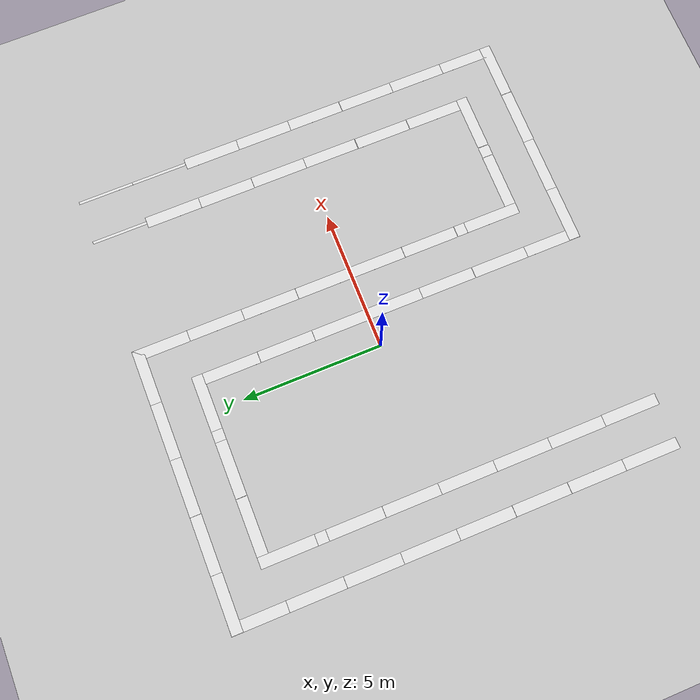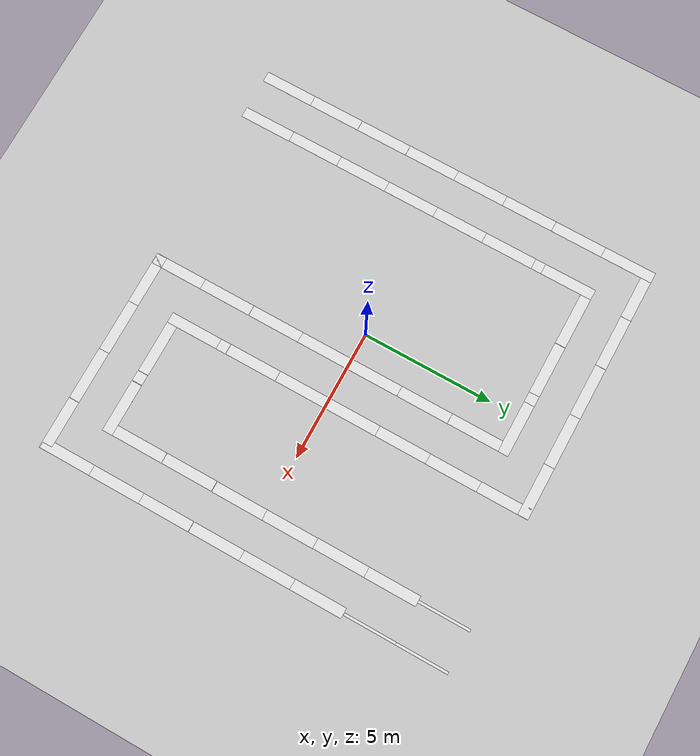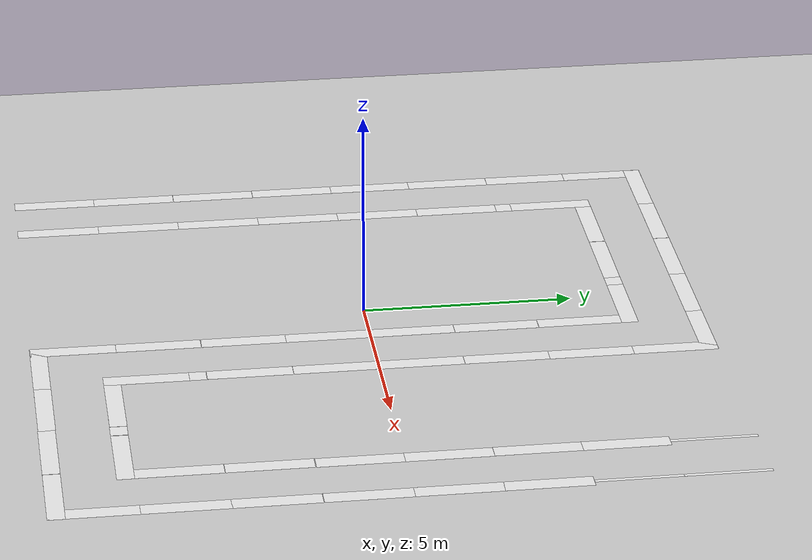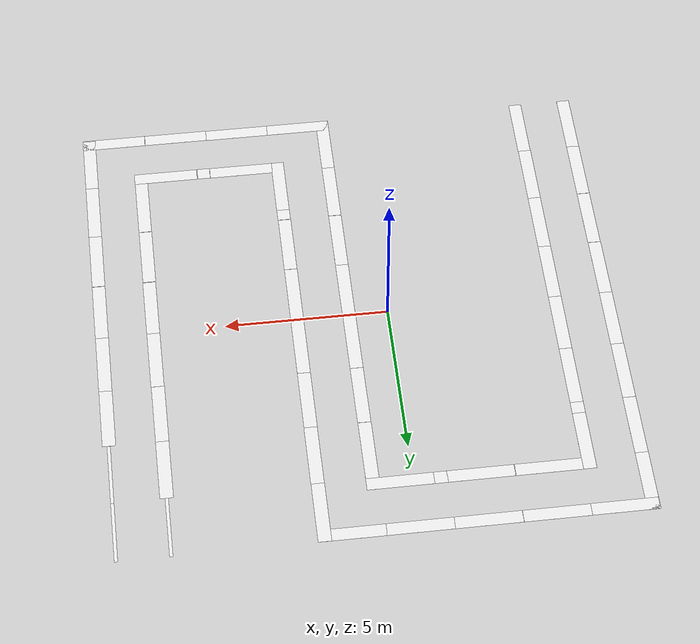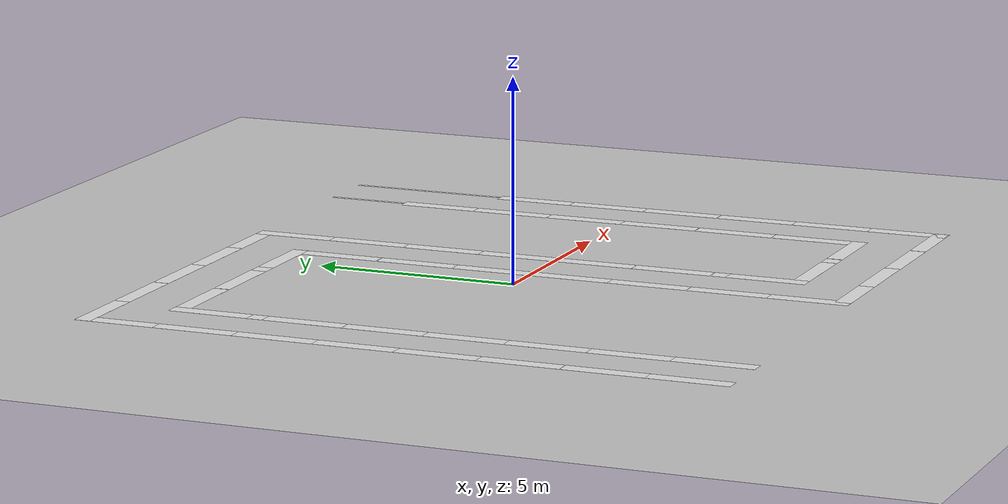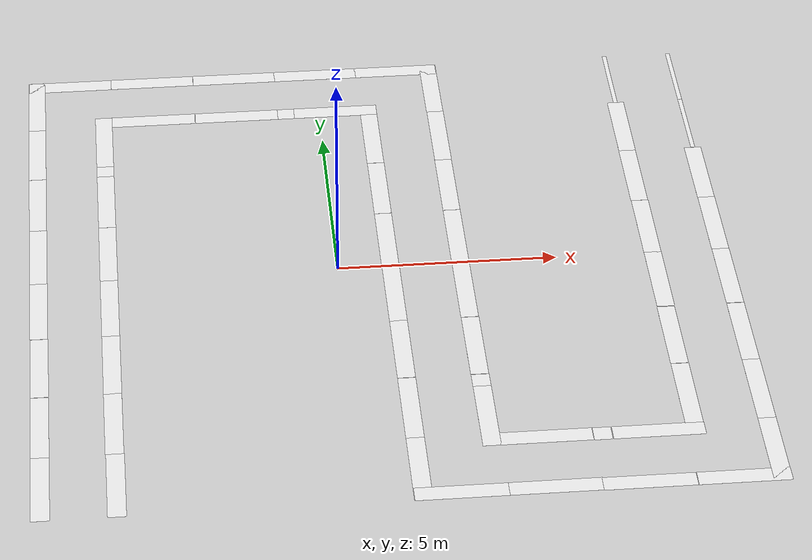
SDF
<sdf version="1.6">
 <world name="default">
  <light name="sun" type="directional">
   <pose>0 0 10 0 -0 0</pose>
   <diffuse>0.8 0.8 0.8 1</diffuse>
   <specular>0.2 0.2 0.2 1</specular>
   <attenuation>
    <range>1000</range>
    <constant>0.9</constant>
    <linear>0.01</linear>
    <quadratic>0.001</quadratic>
   </attenuation>
   <direction>-0.5 0.1 -0.9</direction>
  </light>
  <model name="ground_plane">
   <static>1</static>
   <link name="link">
    <collision name="collision">
     <geometry><plane><normal>0 0 1</normal><size>100 100</size></plane></geometry>
     <surface>
      <contact><collide_bitmask>65535</collide_bitmask></contact>
      <friction><ode><mu>100</mu><mu2>50</mu2></ode></friction>
     </surface>
    </collision>
    <visual name="visual">
     <cast_shadows>0</cast_shadows>
     <geometry><plane><normal>0 0 1</normal><size>100 100</size></plane></geometry>
     <material>
      <script><uri>file://media/materials/scripts/gazebo.material</uri><name>Gazebo/Grey</name></script>
     </material>
    </visual>
   </link>
  </model>
  <gravity>0 0 -9.8</gravity>
  <magnetic_field>6e-06 2.3e-05 -4.2e-05</magnetic_field>
  <atmosphere type="adiabatic"/>
  <physics name="default_physics" default="0" type="ode">
   <max_step_size>0.001</max_step_size>
   <real_time_factor>1</real_time_factor>
   <real_time_update_rate>1000</real_time_update_rate>
  </physics>
  <scene><ambient>0.4 0.4 0.4 1</ambient><background>0.7 0.7 0.7 1</background><shadows>1</shadows></scene>
  <audio><device>default</device></audio>
  <spherical_coordinates>
   <surface_model>EARTH_WGS84</surface_model>
   <latitude_deg>0</latitude_deg>
   <longitude_deg>0</longitude_deg>
   <elevation>0</elevation>
   <heading_deg>0</heading_deg>
  </spherical_coordinates>
  <model name="white line">
   <static>1</static>
   <link name="link_ground">
    <collision name="collision">
     <geometry><plane><normal>0 0 1</normal><size>0.1 2</size></plane></geometry>
     <surface><friction><ode><mu>100</mu><mu2>50</mu2></ode></friction></surface>
    </collision>
    <visual name="visual_ground">
     <cast_shadows>0</cast_shadows>
     <geometry><plane><normal>0 0 1</normal><size>0.1 2</size></plane></geometry>
     <material>
      <script><uri>file://media/materials/scripts/gazebo.material</uri><name>Gazebo/White</name></script>
     </material>
    </visual>
   </link>
   <pose>8.79819 7.00078 0 0 -0 0</pose>
  </model>
  <model name="white line_0">
   <static>1</static>
   <link name="link_ground">
    <collision name="collision">
     <geometry><plane><normal>0 0 1</normal><size>0.1 2</size></plane></geometry>
     <surface><friction><ode><mu>100</mu><mu2>50</mu2></ode></friction></surface>
    </collision>
    <visual name="visual_ground">
     <cast_shadows>0</cast_shadows>
     <geometry><plane><normal>0 0 1</normal><size>0.1 2</size></plane></geometry>
     <material>
      <script><uri>file://media/materials/scripts/gazebo.material</uri><name>Gazebo/White</name></script>
     </material>
    </visual>
   </link>
   <pose>7.21561 7.00606 0 0 -0 0</pose>
  </model>
  <model name="white line_1">
   <static>1</static>
   <link name="link_ground">
    <collision name="collision">
     <geometry><plane><normal>0 0 1</normal><size>0.1 2</size></plane></geometry>
     <surface><friction><ode><mu>100</mu><mu2>50</mu2></ode></friction></surface>
    </collision>
    <visual name="visual_ground">
     <cast_shadows>0</cast_shadows>
     <geometry><plane><normal>0 0 1</normal><size>0.1 2</size></plane></geometry>
     <material>
      <script><uri>file://media/materials/scripts/gazebo.material</uri><name>Gazebo/White</name></script>
     </material>
    </visual>
   </link>
   <pose>8.79819 5.00675 0 0 -0 0</pose>
  </model>
  <model name="white line_2">
   <static>1</static>
   <link name="link_ground">
    <collision name="collision">
     <geometry><plane><normal>0 0 1</normal><size>0.1 2</size></plane></geometry>
     <surface><friction><ode><mu>100</mu><mu2>50</mu2></ode></friction></surface>
    </collision>
    <visual name="visual_ground">
     <cast_shadows>0</cast_shadows>
     <geometry><plane><normal>0 0 1</normal><size>0.4 2</size></plane></geometry>
     <material>
      <script><uri>file://media/materials/scripts/gazebo.material</uri><name>Gazebo/White</name></script>
     </material>
    </visual>
   </link>
   <pose>7.21561 5.00675 0 0 -0 0</pose>
  </model>
  <model name="white line_3">
   <static>1</static>
   <link name="link_ground">
    <collision name="collision">
     <geometry><plane><normal>0 0 1</normal><size>0.4 2</size></plane></geometry>
     <surface><friction><ode><mu>100</mu><mu2>50</mu2></ode></friction></surface>
    </collision>
    <visual name="visual_ground">
     <cast_shadows>0</cast_shadows>
     <geometry><plane><normal>0 0 1</normal><size>0.4 2</size></plane></geometry>
     <material>
      <script><uri>file://media/materials/scripts/gazebo.material</uri><name>Gazebo/White</name></script>
     </material>
    </visual>
   </link>
   <pose>8.78694 2.99686 0 0 -0 0</pose>
  </model>
  <model name="white line_4">
   <static>1</static>
   <link name="link_ground">
    <collision name="collision">
     <geometry><plane><normal>0 0 1</normal><size>0.4 2</size></plane></geometry>
     <surface><friction><ode><mu>100</mu><mu2>50</mu2></ode></friction></surface>
    </collision>
    <visual name="visual_ground">
     <cast_shadows>0</cast_shadows>
     <geometry><plane><normal>0 0 1</normal><size>0.4 2</size></plane></geometry>
     <material>
      <script><uri>file://media/materials/scripts/gazebo.material</uri><name>Gazebo/White</name></script>
     </material>
    </visual>
   </link>
   <pose>7.21276 3.00848 0 0 -0 0</pose>
  </model>
  <model name="white line_5">
   <static>1</static>
   <link name="link_ground">
    <collision name="collision">
     <geometry><plane><normal>0 0 1</normal><size>0.4 2</size></plane></geometry>
     <surface><friction><ode><mu>100</mu><mu2>50</mu2></ode></friction></surface>
    </collision>
    <visual name="visual_ground">
     <cast_shadows>0</cast_shadows>
     <geometry><plane><normal>0 0 1</normal><size>0.4 2</size></plane></geometry>
     <material>
      <script><uri>file://media/materials/scripts/gazebo.material</uri><name>Gazebo/White</name></script>
     </material>
    </visual>
   </link>
   <pose>8.79055 1.00562 0 0 -0 0</pose>
  </model>
  <model name="white line_6">
   <static>1</static>
   <link name="link_ground">
    <collision name="collision">
     <geometry><plane><normal>0 0 1</normal><size>0.4 2</size></plane></geometry>
     <surface><friction><ode><mu>100</mu><mu2>50</mu2></ode></friction></surface>
    </collision>
    <visual name="visual_ground">
     <cast_shadows>0</cast_shadows>
     <geometry><plane><normal>0 0 1</normal><size>0.4 2</size></plane></geometry>
     <material>
      <script><uri>file://media/materials/scripts/gazebo.material</uri><name>Gazebo/White</name></script>
     </material>
    </visual>
   </link>
   <pose>7.22094 1.00562 0 0 -0 0</pose>
  </model>
  <model name="white line_7">
   <static>1</static>
   <link name="link_ground">
    <collision name="collision">
     <geometry><plane><normal>0 0 1</normal><size>0.4 2</size></plane></geometry>
     <surface><friction><ode><mu>100</mu><mu2>50</mu2></ode></friction></surface>
    </collision>
    <visual name="visual_ground">
     <cast_shadows>0</cast_shadows>
     <geometry><plane><normal>0 0 1</normal><size>0.4 2</size></plane></geometry>
     <material>
      <script><uri>file://media/materials/scripts/gazebo.material</uri><name>Gazebo/White</name></script>
     </material>
    </visual>
   </link>
   <pose>8.79384 -0.988457 0 0 -0 0</pose>
  </model>
  <model name="white line_8">
   <static>1</static>
   <link name="link_ground">
    <collision name="collision">
     <geometry><plane><normal>0 0 1</normal><size>0.4 2</size></plane></geometry>
     <surface><friction><ode><mu>100</mu><mu2>50</mu2></ode></friction></surface>
    </collision>
    <visual name="visual_ground">
     <cast_shadows>0</cast_shadows>
     <geometry><plane><normal>0 0 1</normal><size>0.4 2</size></plane></geometry>
     <material>
      <script><uri>file://media/materials/scripts/gazebo.material</uri><name>Gazebo/White</name></script>
     </material>
    </visual>
   </link>
   <pose>7.22305 -0.981907 0 0 -0 0</pose>
  </model>
  <model name="white line_9">
   <static>1</static>
   <link name="link_ground">
    <collision name="collision">
     <geometry><plane><normal>0 0 1</normal><size>0.4 2</size></plane></geometry>
     <surface><friction><ode><mu>100</mu><mu2>50</mu2></ode></friction></surface>
    </collision>
    <visual name="visual_ground">
     <cast_shadows>0</cast_shadows>
     <geometry><plane><normal>0 0 1</normal><size>0.4 2</size></plane></geometry>
     <material>
      <script><uri>file://media/materials/scripts/gazebo.material</uri><name>Gazebo/White</name></script>
     </material>
    </visual>
   </link>
   <pose>8.7951 -3.00096 0 0 -0 0</pose>
  </model>
  <model name="white line_10">
   <static>1</static>
   <link name="link_ground">
    <collision name="collision">
     <geometry><plane><normal>0 0 1</normal><size>0.4 2</size></plane></geometry>
     <surface><friction><ode><mu>100</mu><mu2>50</mu2></ode></friction></surface>
    </collision>
    <visual name="visual_ground">
     <cast_shadows>0</cast_shadows>
     <geometry><plane><normal>0 0 1</normal><size>0.4 2</size></plane></geometry>
     <material>
      <script><uri>file://media/materials/scripts/gazebo.material</uri><name>Gazebo/White</name></script>
     </material>
    </visual>
   </link>
   <pose>7.21529 -3.00096 0 0 -0 0</pose>
  </model>
  <model name="white line_11">
   <static>1</static>
   <link name="link_ground">
    <collision name="collision">
     <geometry><plane><normal>0 0 1</normal><size>0.4 2</size></plane></geometry>
     <surface><friction><ode><mu>100</mu><mu2>50</mu2></ode></friction></surface>
    </collision>
    <visual name="visual_ground">
     <cast_shadows>0</cast_shadows>
     <geometry><plane><normal>0 0 1</normal><size>0.4 2</size></plane></geometry>
     <material>
      <script><uri>file://media/materials/scripts/gazebo.material</uri><name>Gazebo/White</name></script>
     </material>
    </visual>
   </link>
   <pose>8.79781 -4.98928 0 0 -0 0</pose>
  </model>
  <model name="white line_12">
   <static>1</static>
   <link name="link_ground">
    <collision name="collision">
     <geometry><plane><normal>0 0 1</normal><size>0.4 2</size></plane></geometry>
     <surface><friction><ode><mu>100</mu><mu2>50</mu2></ode></friction></surface>
    </collision>
    <visual name="visual_ground">
     <cast_shadows>0</cast_shadows>
     <geometry><plane><normal>0 0 1</normal><size>0.4 2</size></plane></geometry>
     <material>
      <script><uri>file://media/materials/scripts/gazebo.material</uri><name>Gazebo/White</name></script>
     </material>
    </visual>
   </link>
   <pose>7.21787 -5.01138 0 0 -0 0</pose>
  </model>
  <model name="white line_13">
   <static>1</static>
   <link name="link_ground">
    <collision name="collision">
     <geometry><plane><normal>0 0 1</normal><size>0.4 2</size></plane></geometry>
     <surface><friction><ode><mu>100</mu><mu2>50</mu2></ode></friction></surface>
    </collision>
    <visual name="visual_ground">
     <cast_shadows>0</cast_shadows>
     <geometry><plane><normal>0 0 1</normal><size>0.4 2</size></plane></geometry>
     <material>
      <script><uri>file://media/materials/scripts/gazebo.material</uri><name>Gazebo/White</name></script>
     </material>
    </visual>
   </link>
   <pose>8.79781 -6.98912 0 0 -0 0</pose>
  </model>
  <model name="white line_14">
   <static>1</static>
   <link name="link_ground">
    <collision name="collision">
     <geometry><plane><normal>0 0 1</normal><size>2 0.4</size></plane></geometry>
     <surface><friction><ode><mu>100</mu><mu2>50</mu2></ode></friction></surface>
    </collision>
    <visual name="visual_ground">
     <cast_shadows>0</cast_shadows>
     <geometry><plane><normal>0 0 1</normal><size>2 0.4</size></plane></geometry>
     <material>
      <script><uri>file://media/materials/scripts/gazebo.material</uri><name>Gazebo/White</name></script>
     </material>
    </visual>
   </link>
   <pose>6.42234 -6.20458 0 0 -0 0</pose>
  </model>
  <model name="white line_15">
   <static>1</static>
   <link name="link_ground">
    <collision name="collision">
     <geometry><plane><normal>0 0 1</normal><size>2 0.4</size></plane></geometry>
     <surface><friction><ode><mu>100</mu><mu2>50</mu2></ode></friction></surface>
    </collision>
    <visual name="visual_ground">
     <cast_shadows>0</cast_shadows>
     <geometry><plane><normal>0 0 1</normal><size>2 0.4</size></plane></geometry>
     <material>
      <script><uri>file://media/materials/scripts/gazebo.material</uri><name>Gazebo/White</name></script>
     </material>
    </visual>
   </link>
   <pose>8.00228 -7.81774 0 0 -0 0</pose>
  </model>
  <model name="white line_16">
   <static>1</static>
   <link name="link_ground">
    <collision name="collision">
     <geometry><plane><normal>0 0 1</normal><size>2 0.4</size></plane></geometry>
     <surface><friction><ode><mu>100</mu><mu2>50</mu2></ode></friction></surface>
    </collision>
    <visual name="visual_ground">
     <cast_shadows>0</cast_shadows>
     <geometry><plane><normal>0 0 1</normal><size>2 0.4</size></plane></geometry>
     <material>
      <script><uri>file://media/materials/scripts/gazebo.material</uri><name>Gazebo/White</name></script>
     </material>
    </visual>
   </link>
   <pose>5.99145 -7.81774 0 0 -0 0</pose>
  </model>
  <model name="white line_17">
   <static>1</static>
   <link name="link_ground">
    <collision name="collision">
     <geometry><plane><normal>0 0 1</normal><size>0.4 0.4</size></plane></geometry>
     <surface><friction><ode><mu>100</mu><mu2>50</mu2></ode></friction></surface>
    </collision>
    <visual name="visual_ground">
     <cast_shadows>0</cast_shadows>
     <geometry><plane><normal>0 0 1</normal><size>0.4 0.4</size></plane></geometry>
     <material>
      <script><uri>file://media/materials/scripts/gazebo.material</uri><name>Gazebo/White</name></script>
     </material>
    </visual>
   </link>
   <pose>5.20473 -6.20432 0 0 -0 0</pose>
  </model>
  <model name="white line_18">
   <static>1</static>
   <link name="link_ground">
    <collision name="collision">
     <geometry><plane><normal>0 0 1</normal><size>2 0.4</size></plane></geometry>
     <surface><friction><ode><mu>100</mu><mu2>50</mu2></ode></friction></surface>
    </collision>
    <visual name="visual_ground">
     <cast_shadows>0</cast_shadows>
     <geometry><plane><normal>0 0 1</normal><size>2 0.4</size></plane></geometry>
     <material>
      <script><uri>file://media/materials/scripts/gazebo.material</uri><name>Gazebo/White</name></script>
     </material>
    </visual>
   </link>
   <pose>4.00181 -7.8073 0 0 -0 0</pose>
  </model>
  <model name="white line_19">
   <static>1</static>
   <link name="link_ground">
    <collision name="collision">
     <geometry><plane><normal>0 0 1</normal><size>2 0.4</size></plane></geometry>
     <surface><friction><ode><mu>100</mu><mu2>50</mu2></ode></friction></surface>
    </collision>
    <visual name="visual_ground">
     <cast_shadows>0</cast_shadows>
     <geometry><plane><normal>0 0 1</normal><size>2 0.4</size></plane></geometry>
     <material>
      <script><uri>file://media/materials/scripts/gazebo.material</uri><name>Gazebo/White</name></script>
     </material>
    </visual>
   </link>
   <pose>3.99642 -6.19759 0 0 -0 0</pose>
  </model>
  <model name="white line_20">
   <static>1</static>
   <link name="link_ground">
    <collision name="collision">
     <geometry><plane><normal>0 0 1</normal><size>2 0.4</size></plane></geometry>
     <surface><friction><ode><mu>100</mu><mu2>50</mu2></ode></friction></surface>
    </collision>
    <visual name="visual_ground">
     <cast_shadows>0</cast_shadows>
     <geometry><plane><normal>0 0 1</normal><size>2 0.4</size></plane></geometry>
     <material>
      <script><uri>file://media/materials/scripts/gazebo.material</uri><name>Gazebo/White</name></script>
     </material>
    </visual>
   </link>
   <pose>2.00953 -7.8093 0 0 -0 0</pose>
  </model>
  <model name="white line_21">
   <static>1</static>
   <link name="link_ground">
    <collision name="collision">
     <geometry><plane><normal>0 0 1</normal><size>0.4 2</size></plane></geometry>
     <surface><friction><ode><mu>100</mu><mu2>50</mu2></ode></friction></surface>
    </collision>
    <visual name="visual_ground">
     <cast_shadows>0</cast_shadows>
     <geometry><plane><normal>0 0 1</normal><size>0.4 2</size></plane></geometry>
     <material>
      <script><uri>file://media/materials/scripts/gazebo.material</uri><name>Gazebo/White</name></script>
     </material>
    </visual>
   </link>
   <pose>2.81014 -5.39565 0 0 -0 0</pose>
  </model>
  <model name="white line_22">
   <static>1</static>
   <link name="link_ground">
    <collision name="collision">
     <geometry><plane><normal>0 0 1</normal><size>0.4 2</size></plane></geometry>
     <surface><friction><ode><mu>100</mu><mu2>50</mu2></ode></friction></surface>
    </collision>
    <visual name="visual_ground">
     <cast_shadows>0</cast_shadows>
     <geometry><plane><normal>0 0 1</normal><size>0.4 2</size></plane></geometry>
     <material>
      <script><uri>file://media/materials/scripts/gazebo.material</uri><name>Gazebo/White</name></script>
     </material>
    </visual>
   </link>
   <pose>1.19714 -6.99686 0 0 -0 0</pose>
  </model>
  <model name="white line_23">
   <static>1</static>
   <link name="link_ground">
    <collision name="collision">
     <geometry><plane><normal>0 0 1</normal><size>0.4 2</size></plane></geometry>
     <surface><friction><ode><mu>100</mu><mu2>50</mu2></ode></friction></surface>
    </collision>
    <visual name="visual_ground">
     <cast_shadows>0</cast_shadows>
     <geometry><plane><normal>0 0 1</normal><size>0.4 2</size></plane></geometry>
     <material>
      <script><uri>file://media/materials/scripts/gazebo.material</uri><name>Gazebo/White</name></script>
     </material>
    </visual>
   </link>
   <pose>1.19714 -5.00119 0 0 -0 0</pose>
  </model>
  <model name="white line_24">
   <static>1</static>
   <link name="link_ground">
    <collision name="collision">
     <geometry><plane><normal>0 0 1</normal><size>0.4 0.4</size></plane></geometry>
     <surface><friction><ode><mu>100</mu><mu2>50</mu2></ode></friction></surface>
    </collision>
    <visual name="visual_ground">
     <cast_shadows>0</cast_shadows>
     <geometry><plane><normal>0 0 1</normal><size>0.4 0.4</size></plane></geometry>
     <material>
      <script><uri>file://media/materials/scripts/gazebo.material</uri><name>Gazebo/White</name></script>
     </material>
    </visual>
   </link>
   <pose>2.80795 -4.21099 0 0 -0 0</pose>
  </model>
  <model name="white line_25">
   <static>1</static>
   <link name="link_ground">
    <collision name="collision">
     <geometry><plane><normal>0 0 1</normal><size>0.4 2</size></plane></geometry>
     <surface><friction><ode><mu>100</mu><mu2>50</mu2></ode></friction></surface>
    </collision>
    <visual name="visual_ground">
     <cast_shadows>0</cast_shadows>
     <geometry><plane><normal>0 0 1</normal><size>0.4 2</size></plane></geometry>
     <material>
      <script><uri>file://media/materials/scripts/gazebo.material</uri><name>Gazebo/White</name></script>
     </material>
    </visual>
   </link>
   <pose>2.80294 -3.0004 0 0 -0 0</pose>
  </model>
  <model name="white line_26">
   <static>1</static>
   <link name="link_ground">
    <collision name="collision">
     <geometry><plane><normal>0 0 1</normal><size>0.4 2</size></plane></geometry>
     <surface><friction><ode><mu>100</mu><mu2>50</mu2></ode></friction></surface>
    </collision>
    <visual name="visual_ground">
     <cast_shadows>0</cast_shadows>
     <geometry><plane><normal>0 0 1</normal><size>0.4 2</size></plane></geometry>
     <material>
      <script><uri>file://media/materials/scripts/gazebo.material</uri><name>Gazebo/White</name></script>
     </material>
    </visual>
   </link>
   <pose>1.19712 -2.99037 0 0 -0 0</pose>
  </model>
  <model name="white line_27">
   <static>1</static>
   <link name="link_ground">
    <collision name="collision">
     <geometry><plane><normal>0 0 1</normal><size>0.4 2</size></plane></geometry>
     <surface><friction><ode><mu>100</mu><mu2>50</mu2></ode></friction></surface>
    </collision>
    <visual name="visual_ground">
     <cast_shadows>0</cast_shadows>
     <geometry><plane><normal>0 0 1</normal><size>0.4 2</size></plane></geometry>
     <material>
      <script><uri>file://media/materials/scripts/gazebo.material</uri><name>Gazebo/White</name></script>
     </material>
    </visual>
   </link>
   <pose>2.79795 -0.99434 0 0 -0 0</pose>
  </model>
  <model name="white line_28">
   <static>1</static>
   <link name="link_ground">
    <collision name="collision">
     <geometry><plane><normal>0 0 1</normal><size>0.4 2</size></plane></geometry>
     <surface><friction><ode><mu>100</mu><mu2>50</mu2></ode></friction></surface>
    </collision>
    <visual name="visual_ground">
     <cast_shadows>0</cast_shadows>
     <geometry><plane><normal>0 0 1</normal><size>0.4 2</size></plane></geometry>
     <material>
      <script><uri>file://media/materials/scripts/gazebo.material</uri><name>Gazebo/White</name></script>
     </material>
    </visual>
   </link>
   <pose>1.19712 -0.999376 0 0 -0 0</pose>
  </model>
  <model name="white line_29">
   <static>1</static>
   <link name="link_ground">
    <collision name="collision">
     <geometry><plane><normal>0 0 1</normal><size>0.4 2</size></plane></geometry>
     <surface><friction><ode><mu>100</mu><mu2>50</mu2></ode></friction></surface>
    </collision>
    <visual name="visual_ground">
     <cast_shadows>0</cast_shadows>
     <geometry><plane><normal>0 0 1</normal><size>0.4 2</size></plane></geometry>
     <material>
      <script><uri>file://media/materials/scripts/gazebo.material</uri><name>Gazebo/White</name></script>
     </material>
    </visual>
   </link>
   <pose>2.79787 1.00431 0 0 -0 0</pose>
  </model>
  <model name="white line_30">
   <static>1</static>
   <link name="link_ground">
    <collision name="collision">
     <geometry><plane><normal>0 0 1</normal><size>0.4 2</size></plane></geometry>
     <surface><friction><ode><mu>100</mu><mu2>50</mu2></ode></friction></surface>
    </collision>
    <visual name="visual_ground">
     <cast_shadows>0</cast_shadows>
     <geometry><plane><normal>0 0 1</normal><size>0.4 2</size></plane></geometry>
     <material>
      <script><uri>file://media/materials/scripts/gazebo.material</uri><name>Gazebo/White</name></script>
     </material>
    </visual>
   </link>
   <pose>1.19303 1.00431 0 0 -0 0</pose>
  </model>
  <model name="white line_31">
   <static>1</static>
   <link name="link_ground">
    <collision name="collision">
     <geometry><plane><normal>0 0 1</normal><size>0.4 2</size></plane></geometry>
     <surface><friction><ode><mu>100</mu><mu2>50</mu2></ode></friction></surface>
    </collision>
    <visual name="visual_ground">
     <cast_shadows>0</cast_shadows>
     <geometry><plane><normal>0 0 1</normal><size>0.4 2</size></plane></geometry>
     <material>
      <script><uri>file://media/materials/scripts/gazebo.material</uri><name>Gazebo/White</name></script>
     </material>
    </visual>
   </link>
   <pose>2.79787 3.00655 0 0 -0 0</pose>
  </model>
  <model name="white line_32">
   <static>1</static>
   <link name="link_ground">
    <collision name="collision">
     <geometry><plane><normal>0 0 1</normal><size>0.4 2</size></plane></geometry>
     <surface><friction><ode><mu>100</mu><mu2>50</mu2></ode></friction></surface>
    </collision>
    <visual name="visual_ground">
     <cast_shadows>0</cast_shadows>
     <geometry><plane><normal>0 0 1</normal><size>0.4 2</size></plane></geometry>
     <material>
      <script><uri>file://media/materials/scripts/gazebo.material</uri><name>Gazebo/White</name></script>
     </material>
    </visual>
   </link>
   <pose>1.19303 3.00655 0 0 -0 0</pose>
  </model>
  <model name="white line_33">
   <static>1</static>
   <link name="link_ground">
    <collision name="collision">
     <geometry><plane><normal>0 0 1</normal><size>0.4 2</size></plane></geometry>
     <surface><friction><ode><mu>100</mu><mu2>50</mu2></ode></friction></surface>
    </collision>
    <visual name="visual_ground">
     <cast_shadows>0</cast_shadows>
     <geometry><plane><normal>0 0 1</normal><size>0.4 2</size></plane></geometry>
     <material>
      <script><uri>file://media/materials/scripts/gazebo.material</uri><name>Gazebo/White</name></script>
     </material>
    </visual>
   </link>
   <pose>2.80224 5.0036 0 0 -0 0</pose>
  </model>
  <model name="white line_34">
   <static>1</static>
   <link name="link_ground">
    <collision name="collision">
     <geometry><plane><normal>0 0 1</normal><size>0.4 2</size></plane></geometry>
     <surface><friction><ode><mu>100</mu><mu2>50</mu2></ode></friction></surface>
    </collision>
    <visual name="visual_ground">
     <cast_shadows>0</cast_shadows>
     <geometry><plane><normal>0 0 1</normal><size>0.4 2</size></plane></geometry>
     <material>
      <script><uri>file://media/materials/scripts/gazebo.material</uri><name>Gazebo/White</name></script>
     </material>
    </visual>
   </link>
   <pose>1.18928 5.01286 0 0 -0 0</pose>
  </model>
  <model name="white line_35">
   <static>1</static>
   <link name="link_ground">
    <collision name="collision">
     <geometry><plane><normal>0 0 1</normal><size>0.4 2</size></plane></geometry>
     <surface><friction><ode><mu>100</mu><mu2>50</mu2></ode></friction></surface>
    </collision>
    <visual name="visual_ground">
     <cast_shadows>0</cast_shadows>
     <geometry><plane><normal>0 0 1</normal><size>0.4 2</size></plane></geometry>
     <material>
      <script><uri>file://media/materials/scripts/gazebo.material</uri><name>Gazebo/White</name></script>
     </material>
    </visual>
   </link>
   <pose>2.79742 7.0011 0 0 -0 0</pose>
  </model>
  <model name="white line_36">
   <static>1</static>
   <link name="link_ground">
    <collision name="collision">
     <geometry><plane><normal>0 0 1</normal><size>2 0.4</size></plane></geometry>
     <surface><friction><ode><mu>100</mu><mu2>50</mu2></ode></friction></surface>
    </collision>
    <visual name="visual_ground">
     <cast_shadows>0</cast_shadows>
     <geometry><plane><normal>0 0 1</normal><size>2 0.4</size></plane></geometry>
     <material>
      <script><uri>file://media/materials/scripts/gazebo.material</uri><name>Gazebo/White</name></script>
     </material>
    </visual>
   </link>
   <pose>1.98758 7.80318 0 0 -0 0</pose>
  </model>
  <model name="white line_37">
   <static>1</static>
   <link name="link_ground">
    <collision name="collision">
     <geometry><plane><normal>0 0 1</normal><size>2 0.4</size></plane></geometry>
     <surface><friction><ode><mu>100</mu><mu2>50</mu2></ode></friction></surface>
    </collision>
    <visual name="visual_ground">
     <cast_shadows>0</cast_shadows>
     <geometry><plane><normal>0 0 1</normal><size>2 0.4</size></plane></geometry>
     <material>
      <script><uri>file://media/materials/scripts/gazebo.material</uri><name>Gazebo/White</name></script>
     </material>
    </visual>
   </link>
   <pose>0.390717 6.1989 0 0 -0 0</pose>
  </model>
  <model name="white line_38">
   <static>1</static>
   <link name="link_ground">
    <collision name="collision">
     <geometry><plane><normal>0 0 1</normal><size>2 0.4</size></plane></geometry>
     <surface><friction><ode><mu>100</mu><mu2>50</mu2></ode></friction></surface>
    </collision>
    <visual name="visual_ground">
     <cast_shadows>0</cast_shadows>
     <geometry><plane><normal>0 0 1</normal><size>2 0.4</size></plane></geometry>
     <material>
      <script><uri>file://media/materials/scripts/gazebo.material</uri><name>Gazebo/White</name></script>
     </material>
    </visual>
   </link>
   <pose>0.001404 7.80197 0 0 -0 0</pose>
  </model>
  <model name="white line_39">
   <static>1</static>
   <link name="link_ground">
    <collision name="collision">
     <geometry><plane><normal>0 0 1</normal><size>0.4 0.4</size></plane></geometry>
     <surface><friction><ode><mu>100</mu><mu2>50</mu2></ode></friction></surface>
    </collision>
    <visual name="visual_ground">
     <cast_shadows>0</cast_shadows>
     <geometry><plane><normal>0 0 1</normal><size>0.4 0.4</size></plane></geometry>
     <material>
      <script><uri>file://media/materials/scripts/gazebo.material</uri><name>Gazebo/White</name></script>
     </material>
    </visual>
   </link>
   <pose>-0.807768 6.1989 0 0 -0 0</pose>
  </model>
  <model name="white line_40">
   <static>1</static>
   <link name="link_ground">
    <collision name="collision">
     <geometry><plane><normal>0 0 1</normal><size>2 0.4</size></plane></geometry>
     <surface><friction><ode><mu>100</mu><mu2>50</mu2></ode></friction></surface>
    </collision>
    <visual name="visual_ground">
     <cast_shadows>0</cast_shadows>
     <geometry><plane><normal>0 0 1</normal><size>2 0.4</size></plane></geometry>
     <material>
      <script><uri>file://media/materials/scripts/gazebo.material</uri><name>Gazebo/White</name></script>
     </material>
    </visual>
   </link>
   <pose>-1.99216 7.8021 0 0 -0 0</pose>
  </model>
  <model name="white line_41">
   <static>1</static>
   <link name="link_ground">
    <collision name="collision">
     <geometry><plane><normal>0 0 1</normal><size>2 0.4</size></plane></geometry>
     <surface><friction><ode><mu>100</mu><mu2>50</mu2></ode></friction></surface>
    </collision>
    <visual name="visual_ground">
     <cast_shadows>0</cast_shadows>
     <geometry><plane><normal>0 0 1</normal><size>2 0.4</size></plane></geometry>
     <material>
      <script><uri>file://media/materials/scripts/gazebo.material</uri><name>Gazebo/White</name></script>
     </material>
    </visual>
   </link>
   <pose>-1.99855 6.19776 0 0 -0 0</pose>
  </model>
  <model name="white line_42">
   <static>1</static>
   <link name="link_ground">
    <collision name="collision">
     <geometry><plane><normal>0 0 1</normal><size>2 0.4</size></plane></geometry>
     <surface><friction><ode><mu>100</mu><mu2>50</mu2></ode></friction></surface>
    </collision>
    <visual name="visual_ground">
     <cast_shadows>0</cast_shadows>
     <geometry><plane><normal>0 0 1</normal><size>2 0.4</size></plane></geometry>
     <material>
      <script><uri>file://media/materials/scripts/gazebo.material</uri><name>Gazebo/White</name></script>
     </material>
    </visual>
   </link>
   <pose>-3.99754 7.8021 0 0 -0 0</pose>
  </model>
  <model name="white line_43">
   <static>1</static>
   <link name="link_ground">
    <collision name="collision">
     <geometry><plane><normal>0 0 1</normal><size>2 0.4</size></plane></geometry>
     <surface><friction><ode><mu>100</mu><mu2>50</mu2></ode></friction></surface>
    </collision>
    <visual name="visual_ground">
     <cast_shadows>0</cast_shadows>
     <geometry><plane><normal>0 0 1</normal><size>2 0.4</size></plane></geometry>
     <material>
      <script><uri>file://media/materials/scripts/gazebo.material</uri><name>Gazebo/White</name></script>
     </material>
    </visual>
   </link>
   <pose>-4.0103 6.19776 0 0 -0 0</pose>
  </model>
  <model name="white line_44">
   <static>1</static>
   <link name="link_ground">
    <collision name="collision">
     <geometry><plane><normal>0 0 1</normal><size>2 0.4</size></plane></geometry>
     <surface><friction><ode><mu>100</mu><mu2>50</mu2></ode></friction></surface>
    </collision>
    <visual name="visual_ground">
     <cast_shadows>0</cast_shadows>
     <geometry><plane><normal>0 0 1</normal><size>2 0.4</size></plane></geometry>
     <material>
      <script><uri>file://media/materials/scripts/gazebo.material</uri><name>Gazebo/White</name></script>
     </material>
    </visual>
   </link>
   <pose>-5.99833 7.79851 0 0 -0 0</pose>
  </model>
  <model name="white line_45">
   <static>1</static>
   <link name="link_ground">
    <collision name="collision">
     <geometry><plane><normal>0 0 1</normal><size>0.4 2</size></plane></geometry>
     <surface><friction><ode><mu>100</mu><mu2>50</mu2></ode></friction></surface>
    </collision>
    <visual name="visual_ground">
     <cast_shadows>0</cast_shadows>
     <geometry><plane><normal>0 0 1</normal><size>0.4 2</size></plane></geometry>
     <material>
      <script><uri>file://media/materials/scripts/gazebo.material</uri><name>Gazebo/White</name></script>
     </material>
    </visual>
   </link>
   <pose>-6.80791 7.00153 0 0 -0 0</pose>
  </model>
  <model name="white line_46">
   <static>1</static>
   <link name="link_ground">
    <collision name="collision">
     <geometry><plane><normal>0 0 1</normal><size>0.4 2</size></plane></geometry>
     <surface><friction><ode><mu>100</mu><mu2>50</mu2></ode></friction></surface>
    </collision>
    <visual name="visual_ground">
     <cast_shadows>0</cast_shadows>
     <geometry><plane><normal>0 0 1</normal><size>0.4 2</size></plane></geometry>
     <material>
      <script><uri>file://media/materials/scripts/gazebo.material</uri><name>Gazebo/White</name></script>
     </material>
    </visual>
   </link>
   <pose>-5.20779 5.39493 0 0 -0 0</pose>
  </model>
  <model name="white line_47">
   <static>1</static>
   <link name="link_ground">
    <collision name="collision">
     <geometry><plane><normal>0 0 1</normal><size>0.4 0.4</size></plane></geometry>
     <surface><friction><ode><mu>100</mu><mu2>50</mu2></ode></friction></surface>
    </collision>
    <visual name="visual_ground">
     <cast_shadows>0</cast_shadows>
     <geometry><plane><normal>0 0 1</normal><size>0.4 0.4</size></plane></geometry>
     <material>
      <script><uri>file://media/materials/scripts/gazebo.material</uri><name>Gazebo/White</name></script>
     </material>
    </visual>
   </link>
   <pose>-5.20779 4.20159 0 0 -0 0</pose>
  </model>
  <model name="white line_48">
   <static>1</static>
   <link name="link_ground">
    <collision name="collision">
     <geometry><plane><normal>0 0 1</normal><size>0.4 2</size></plane></geometry>
     <surface><friction><ode><mu>100</mu><mu2>50</mu2></ode></friction></surface>
    </collision>
    <visual name="visual_ground">
     <cast_shadows>0</cast_shadows>
     <geometry><plane><normal>0 0 1</normal><size>0.4 2</size></plane></geometry>
     <material>
      <script><uri>file://media/materials/scripts/gazebo.material</uri><name>Gazebo/White</name></script>
     </material>
    </visual>
   </link>
   <pose>-6.80563 5.00392 0 0 -0 0</pose>
  </model>
  <model name="white line_49">
   <static>1</static>
   <link name="link_ground">
    <collision name="collision">
     <geometry><plane><normal>0 0 1</normal><size>0.4 2</size></plane></geometry>
     <surface><friction><ode><mu>100</mu><mu2>50</mu2></ode></friction></surface>
    </collision>
    <visual name="visual_ground">
     <cast_shadows>0</cast_shadows>
     <geometry><plane><normal>0 0 1</normal><size>0.4 2</size></plane></geometry>
     <material>
      <script><uri>file://media/materials/scripts/gazebo.material</uri><name>Gazebo/White</name></script>
     </material>
    </visual>
   </link>
   <pose>-5.20762 3.00238 0 0 -0 0</pose>
  </model>
  <model name="white line_50">
   <static>1</static>
   <link name="link_ground">
    <collision name="collision">
     <geometry><plane><normal>0 0 1</normal><size>0.4 2</size></plane></geometry>
     <surface><friction><ode><mu>100</mu><mu2>50</mu2></ode></friction></surface>
    </collision>
    <visual name="visual_ground">
     <cast_shadows>0</cast_shadows>
     <geometry><plane><normal>0 0 1</normal><size>0.4 2</size></plane></geometry>
     <material>
      <script><uri>file://media/materials/scripts/gazebo.material</uri><name>Gazebo/White</name></script>
     </material>
    </visual>
   </link>
   <pose>-6.80539 3.00238 0 0 -0 0</pose>
  </model>
  <model name="white line_51">
   <static>1</static>
   <link name="link_ground">
    <collision name="collision">
     <geometry><plane><normal>0 0 1</normal><size>0.4 2</size></plane></geometry>
     <surface><friction><ode><mu>100</mu><mu2>50</mu2></ode></friction></surface>
    </collision>
    <visual name="visual_ground">
     <cast_shadows>0</cast_shadows>
     <geometry><plane><normal>0 0 1</normal><size>0.4 2</size></plane></geometry>
     <material>
      <script><uri>file://media/materials/scripts/gazebo.material</uri><name>Gazebo/White</name></script>
     </material>
    </visual>
   </link>
   <pose>-5.20809 1.00001 0 0 -0 0</pose>
  </model>
  <model name="white line_52">
   <static>1</static>
   <link name="link_ground">
    <collision name="collision">
     <geometry><plane><normal>0 0 1</normal><size>0.4 2</size></plane></geometry>
     <surface><friction><ode><mu>100</mu><mu2>50</mu2></ode></friction></surface>
    </collision>
    <visual name="visual_ground">
     <cast_shadows>0</cast_shadows>
     <geometry><plane><normal>0 0 1</normal><size>0.4 2</size></plane></geometry>
     <material>
      <script><uri>file://media/materials/scripts/gazebo.material</uri><name>Gazebo/White</name></script>
     </material>
    </visual>
   </link>
   <pose>-6.80257 1.00686 0 0 -0 0</pose>
  </model>
  <model name="white line_53">
   <static>1</static>
   <link name="link_ground">
    <collision name="collision">
     <geometry><plane><normal>0 0 1</normal><size>0.4 2</size></plane></geometry>
     <surface><friction><ode><mu>100</mu><mu2>50</mu2></ode></friction></surface>
    </collision>
    <visual name="visual_ground">
     <cast_shadows>0</cast_shadows>
     <geometry><plane><normal>0 0 1</normal><size>0.4 2</size></plane></geometry>
     <material>
      <script><uri>file://media/materials/scripts/gazebo.material</uri><name>Gazebo/White</name></script>
     </material>
    </visual>
   </link>
   <pose>-5.20793 -1.00022 0 0 -0 0</pose>
  </model>
  <model name="white line_54">
   <static>1</static>
   <link name="link_ground">
    <collision name="collision">
     <geometry><plane><normal>0 0 1</normal><size>0.4 2</size></plane></geometry>
     <surface><friction><ode><mu>100</mu><mu2>50</mu2></ode></friction></surface>
    </collision>
    <visual name="visual_ground">
     <cast_shadows>0</cast_shadows>
     <geometry><plane><normal>0 0 1</normal><size>0.4 2</size></plane></geometry>
     <material>
      <script><uri>file://media/materials/scripts/gazebo.material</uri><name>Gazebo/White</name></script>
     </material>
    </visual>
   </link>
   <pose>-6.8018 -0.985296 0 0 -0 0</pose>
  </model>
  <model name="white line_55">
   <static>1</static>
   <link name="link_ground">
    <collision name="collision">
     <geometry><plane><normal>0 0 1</normal><size>0.4 2</size></plane></geometry>
     <surface><friction><ode><mu>100</mu><mu2>50</mu2></ode></friction></surface>
    </collision>
    <visual name="visual_ground">
     <cast_shadows>0</cast_shadows>
     <geometry><plane><normal>0 0 1</normal><size>0.4 2</size></plane></geometry>
     <material>
      <script><uri>file://media/materials/scripts/gazebo.material</uri><name>Gazebo/White</name></script>
     </material>
    </visual>
   </link>
   <pose>-5.20793 -2.99822 0 0 -0 0</pose>
  </model>
  <model name="white line_56">
   <static>1</static>
   <link name="link_ground">
    <collision name="collision">
     <geometry><plane><normal>0 0 1</normal><size>0.4 2</size></plane></geometry>
     <surface><friction><ode><mu>100</mu><mu2>50</mu2></ode></friction></surface>
    </collision>
    <visual name="visual_ground">
     <cast_shadows>0</cast_shadows>
     <geometry><plane><normal>0 0 1</normal><size>0.4 2</size></plane></geometry>
     <material>
      <script><uri>file://media/materials/scripts/gazebo.material</uri><name>Gazebo/White</name></script>
     </material>
    </visual>
   </link>
   <pose>-6.79436 -2.99074 0 0 -0 0</pose>
  </model>
  <model name="white line_57">
   <static>1</static>
   <link name="link_ground">
    <collision name="collision">
     <geometry><plane><normal>0 0 1</normal><size>0.4 2</size></plane></geometry>
     <surface><friction><ode><mu>100</mu><mu2>50</mu2></ode></friction></surface>
    </collision>
    <visual name="visual_ground">
     <cast_shadows>0</cast_shadows>
     <geometry><plane><normal>0 0 1</normal><size>0.4 2</size></plane></geometry>
     <material>
      <script><uri>file://media/materials/scripts/gazebo.material</uri><name>Gazebo/White</name></script>
     </material>
    </visual>
   </link>
   <pose>-5.20903 -4.98912 0 0 -0 0</pose>
  </model>
  <model name="white line_58">
   <static>1</static>
   <link name="link_ground">
    <collision name="collision">
     <geometry><plane><normal>0 0 1</normal><size>0.4 2</size></plane></geometry>
     <surface><friction><ode><mu>100</mu><mu2>50</mu2></ode></friction></surface>
    </collision>
    <visual name="visual_ground">
     <cast_shadows>0</cast_shadows>
     <geometry><plane><normal>0 0 1</normal><size>0.4 2</size></plane></geometry>
     <material>
      <script><uri>file://media/materials/scripts/gazebo.material</uri><name>Gazebo/White</name></script>
     </material>
    </visual>
   </link>
   <pose>-6.79413 -4.99862 0 0 -0 0</pose>
  </model>
  <model name="white line_59">
   <static>1</static>
   <link name="link_ground">
    <collision name="collision">
     <geometry><plane><normal>0 0 1</normal><size>0.4 2</size></plane></geometry>
     <surface><friction><ode><mu>100</mu><mu2>50</mu2></ode></friction></surface>
    </collision>
    <visual name="visual_ground">
     <cast_shadows>0</cast_shadows>
     <geometry><plane><normal>0 0 1</normal><size>0.4 2</size></plane></geometry>
     <material>
      <script><uri>file://media/materials/scripts/gazebo.material</uri><name>Gazebo/White</name></script>
     </material>
    </visual>
   </link>
   <pose>-5.19878 -6.9858 0 0 -0 0</pose>
  </model>
  <model name="white line_60">
   <static>1</static>
   <link name="link_ground">
    <collision name="collision">
     <geometry><plane><normal>0 0 1</normal><size>0.4 2</size></plane></geometry>
     <surface><friction><ode><mu>100</mu><mu2>50</mu2></ode></friction></surface>
    </collision>
    <visual name="visual_ground">
     <cast_shadows>0</cast_shadows>
     <geometry><plane><normal>0 0 1</normal><size>0.4 2</size></plane></geometry>
     <material>
      <script><uri>file://media/materials/scripts/gazebo.material</uri><name>Gazebo/White</name></script>
     </material>
    </visual>
   </link>
   <pose>-6.79337 -6.9858 0 0 -0 0</pose>
  </model>
 </world>
</sdf>
